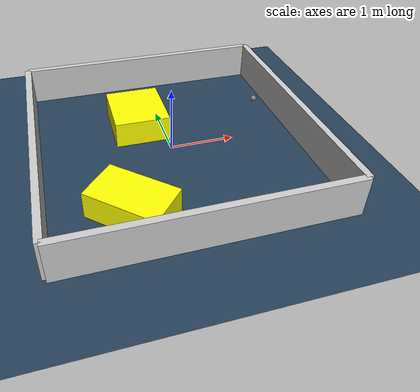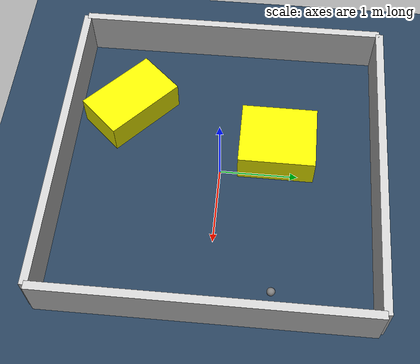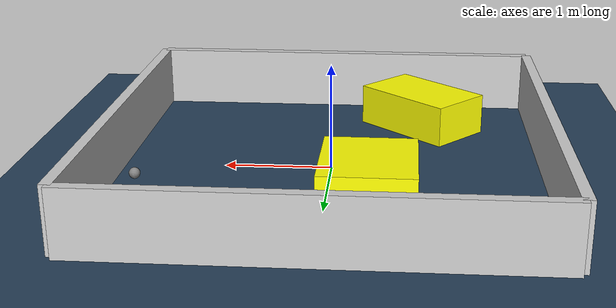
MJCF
<?xml version="1.0" ?>
<mujoco model="generated_environment">
  <option timestep="0.01" integrator="RK4" cone="elliptic"/>
  <default>
    <geom density="1"/>
  </default>
  <asset>
    <texture builtin="gradient" height="3072" rgb1="0.3 0.5 0.7" rgb2="0 0 0" type="skybox" width="512"/>
    <texture builtin="checker" height="300" mark="edge" markrgb="0.8 0.8 0.8" name="groundplane" rgb1="0.2 0.3 0.4" rgb2="0.1 0.2 0.3" type="2d" width="300"/>
    <material name="groundplane" reflectance="0.2" texrepeat="5 5" texture="groundplane" texuniform="true"/>
    <material name="robot" rgba="0.0 1.0 0.0 1"/>
  </asset>
  <worldbody>
    <light dir="0 0 -1" directional="true" pos="0 0 1.5"/>
    <geom condim="4" friction="1.0 0.005 0.001" material="groundplane" name="floor" size="0 0 0.05" type="plane"/>
    <body name="walls">
      <geom name="wall_1" condim="4" pos="-2.0 0.0 0.3" rgba="0.800000011920929 0.800000011920929 0.800000011920929 1.0" size="0.05 2.0 0.3" type="box"/>
      <geom name="wall_2" condim="4" pos="2.0 0.0 0.3" rgba="0.800000011920929 0.800000011920929 0.800000011920929 1.0" size="0.05 2.0 0.3" type="box"/>
      <geom name="wall_3" condim="4" pos="0.0 -2.0 0.3" rgba="0.800000011920929 0.800000011920929 0.800000011920929 1.0" size="2.0 0.05 0.3" type="box"/>
      <geom name="wall_4" condim="4" pos="0.0 2.0 0.3" rgba="0.800000011920929 0.800000011920929 0.800000011920929 1.0" size="2.0 0.05 0.3" type="box"/>
    </body>
    <body name="robot">
      <joint name="joint_x" type="slide" pos="0 0 0" axis="1 0 0"/>
      <joint name="joint_y" type="slide" pos="0 0 0" axis="0 1 0"/>
      <geom name="robot" type="sphere" pos="1.6767062097469632 0.7392807265587438 0.2" size="0.05" mass="5." friction="1.0 0.005 0.0001" condim="4"/>
      <site name="sensor_ball"/>
    </body>
    <body name="obstacle_1_movable">
      <geom name="obstacle_1_movable" condim="4" pos="-0.3740608409940487 0.716935118567146 0.2" euler="0 0 179.62556544566854" friction="1.0 0.005 0.001" rgba="1 1 0 1" size="0.4248930165614203 0.48657551864618426 0.2" type="box" mass="0.1"/>
      <joint type="free"/>
    </body>
    <body name="obstacle_2_movable">
      <geom name="obstacle_2_movable" condim="4" pos="-0.8576694433824327 -1.2585633225340866 0.2" euler="0 0 137.3028892475458" friction="1.0 0.005 0.001" rgba="1 1 0 1" size="0.539812242849792 0.3285579892748487 0.2" type="box" mass="0.1"/>
      <joint type="free"/>
    </body>
  </worldbody>
  <actuator>
    <motor name="actuator_x" joint="joint_x" gear="1" ctrlrange="-1 1"/>
    <motor name="actuator_y" joint="joint_y" gear="1" ctrlrange="-1 1"/>
  </actuator>
</mujoco>
